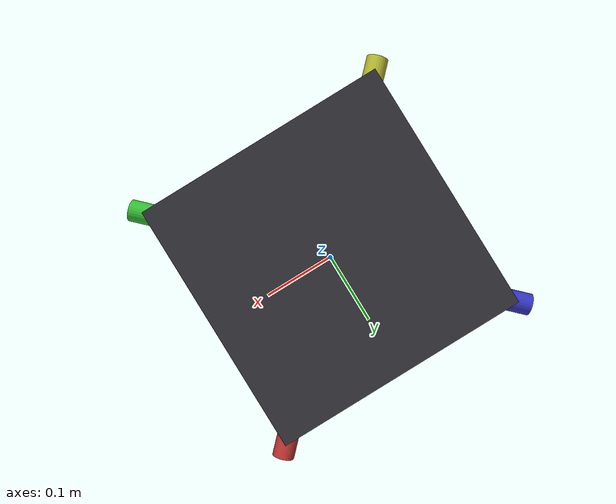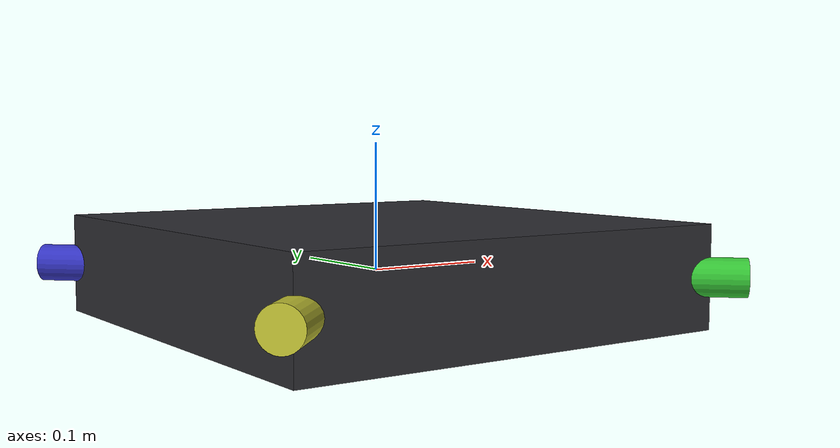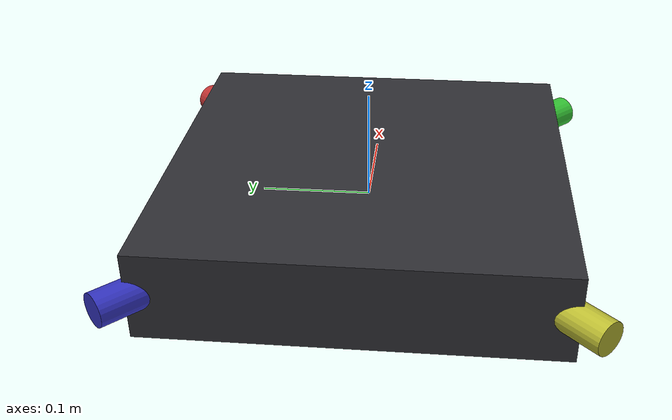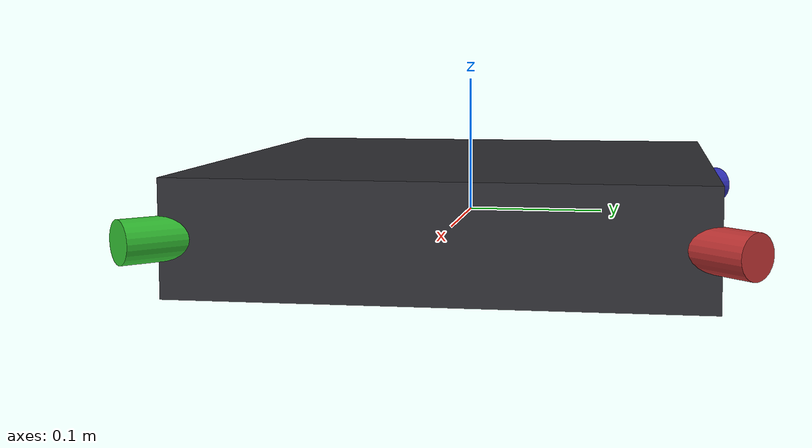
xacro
<?xml version="1.0"?>
<robot xmlns:xacro="http://www.ros.org/wiki/xacro" name="tranq_drone">
  <link name="base_footprint"/>
  <joint name="base_footprint_joint" type="fixed">
    <parent link="base_footprint"/>
    <child link="base_link"/>
    <origin xyz="0 0 0" rpy="0 0 0"/>
  </joint>

  <link name="base_link">
    <inertial>
      <origin xyz="0 0 0" rpy="0 0 0"/>
      <mass value="2.0"/>
      <inertia ixx="0.04" ixy="0.0" ixz="0.0" iyy="0.04" iyz="0.0" izz="0.06"/>
    </inertial>
    <visual>
      <origin xyz="0 0 0" rpy="0 0 0"/>
      <geometry><box size="0.36 0.36 0.08"/></geometry>
      <material name="dark_grey"><color rgba="0.18 0.18 0.20 1"/></material>
    </visual>
    <collision>
      <origin xyz="0 0 0" rpy="0 0 0"/>
      <geometry><box size="0.36 0.36 0.08"/></geometry>
    </collision>
  </link>

  <link name="arm_front_left"><visual><geometry><cylinder radius="0.015" length="0.28"/></geometry><origin xyz="0.1 0.1 0" rpy="0 1.5708 0.7854"/><material name="arm"><color rgba="0.75 0.2 0.2 1"/></material></visual></link>
  <link name="arm_front_right"><visual><geometry><cylinder radius="0.015" length="0.28"/></geometry><origin xyz="0.1 -0.1 0" rpy="0 1.5708 -0.7854"/><material name="arm"><color rgba="0.2 0.75 0.2 1"/></material></visual></link>
  <link name="arm_rear_left"><visual><geometry><cylinder radius="0.015" length="0.28"/></geometry><origin xyz="-0.1 0.1 0" rpy="0 1.5708 -0.7854"/><material name="arm"><color rgba="0.2 0.2 0.75 1"/></material></visual></link>
  <link name="arm_rear_right"><visual><geometry><cylinder radius="0.015" length="0.28"/></geometry><origin xyz="-0.1 -0.1 0" rpy="0 1.5708 0.7854"/><material name="arm"><color rgba="0.75 0.75 0.2 1"/></material></visual></link>

  <joint name="j1" type="fixed"><parent link="base_link"/><child link="arm_front_left"/><origin xyz="0 0 0" rpy="0 0 0"/></joint>
  <joint name="j2" type="fixed"><parent link="base_link"/><child link="arm_front_right"/><origin xyz="0 0 0" rpy="0 0 0"/></joint>
  <joint name="j3" type="fixed"><parent link="base_link"/><child link="arm_rear_left"/><origin xyz="0 0 0" rpy="0 0 0"/></joint>
  <joint name="j4" type="fixed"><parent link="base_link"/><child link="arm_rear_right"/><origin xyz="0 0 0" rpy="0 0 0"/></joint>
</robot>
